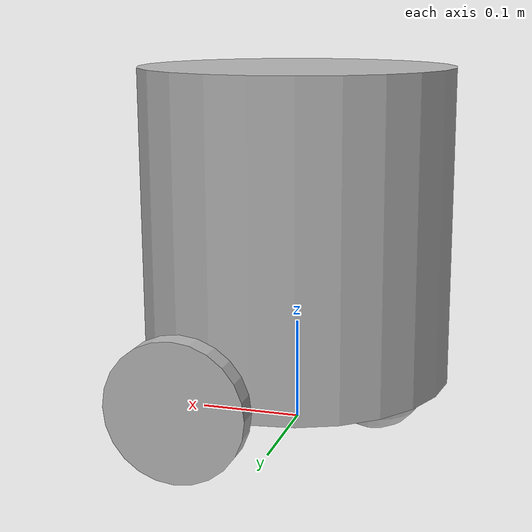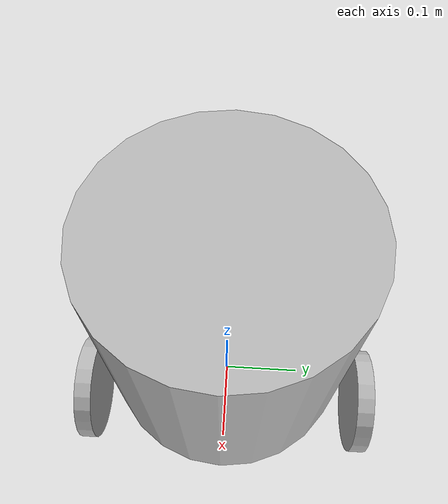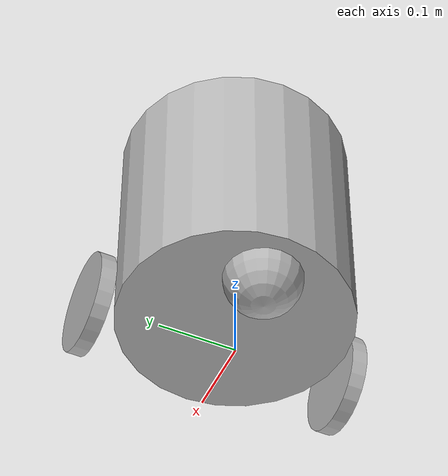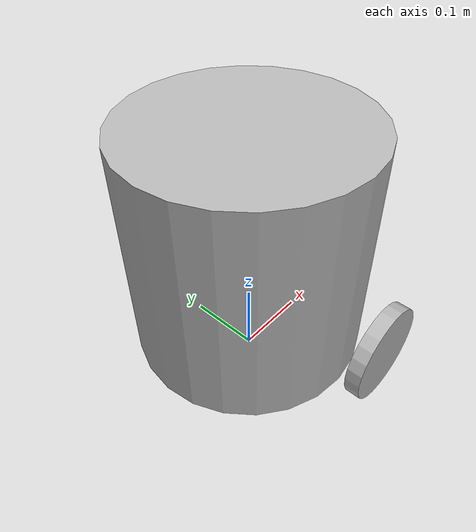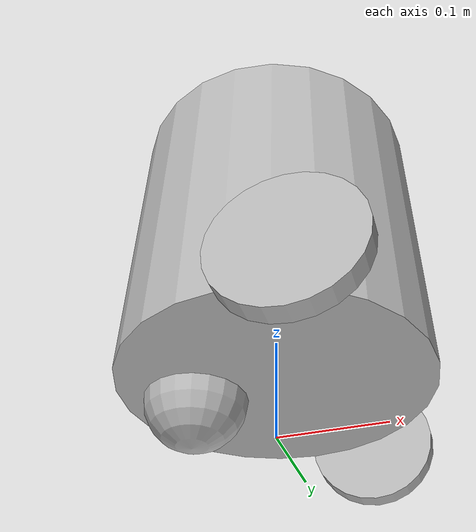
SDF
<?xml version='1.0'?>
<sdf version='1.4'>
  <model name="my_robot">
	<link name='chassis'>
            <pose>0 0 .2 0 0 0</pose>
	    <inertial>
		 <mass>10.0</mass>
		 <pose>0.0 0 0.1 0 0 0</pose>
		 <inertia>
		 <ixx>0.5</ixx>
		 <iyy>1.0</iyy>
		 <izz>0.1</izz>
		 </inertia>
	    </inertial>
            <collision name='collision'>
            <geometry>
              <cylinder>
	      <radius>.15</radius>
	      <length>.3</length>
	    </cylinder>
            </geometry>
          </collision>

            <visual name='visual'>
              <geometry>
              <cylinder>
	      <radius>.15</radius>
	      <length>.3</length>
	    </cylinder>
            </geometry>
            </visual>

	 <collision name='caster_collision'>
            <pose>-0.08 0 -0.15 0 0 0</pose>
            <geometry>
                <sphere>
                <radius>.05</radius>
              </sphere>
            </geometry>

            <surface>
              <friction>
                <ode>
                  <mu>0</mu>
                  <mu2>0</mu2>
                  <slip1>1.0</slip1>
                  <slip2>1.0</slip2>
                </ode>
              </friction>
            </surface>
          </collision>

          <visual name='caster_visual'>
            <pose>-0.08 0 -0.15 0 0 0</pose>
            <geometry>
              <sphere>
                <radius>.05</radius>
              </sphere>
            </geometry>
          </visual>

	  <sensor name="ir0" type="ray">
		<pose>0.17 0 0.0 0 0 0</pose>
		<ray>
		  <scan>
		    <horizontal>
		      <samples>1</samples>
		      <resolution>1</resolution>
		      <min_angle>-0.0001</min_angle>
		      <max_angle>0.0001</max_angle>
		    </horizontal>
		  </scan>
		  <range>
		    <min>0.08</min>
		    <max>.8</max>
		    <resolution>0.01</resolution>
		  </range>
		  <noise>
		    <type>gaussian</type>
		    <mean>0.0</mean>
		    <stddev>0.01</stddev>
		  </noise>
		</ray>
		<plugin name="gazebo_ros_head_hokuyo_controller" filename="libgazebo_ros_laser.so">
			<topicName>/ir0</topicName>
			<frameName>base</frameName>
	      	</plugin>

		<always_on>1</always_on>
		<update_rate>10</update_rate>
		<visualize>true</visualize>
	      </sensor>

          </link>

	<link name="left_wheel">
		<pose>0.06 0.17 0.065 0 1.5707 1.5707</pose>
		<collision name="collision">
		  <geometry>
		    <cylinder>
		      <radius>.065</radius>
		      <length>.02</length>
		    </cylinder>
		  </geometry>
		</collision>
		<visual name="visual">
		  <geometry>
		    <cylinder>
		      <radius>.065</radius>
		      <length>.02</length>
		    </cylinder>
		  </geometry>
		</visual>
      </link>
      <link name="right_wheel">
        <pose>0.06 -0.17 0.065 0 1.5707 1.5707</pose>
        <collision name="collision">
          <geometry>
            <cylinder>
              <radius>.065</radius>
              <length>.02</length>
            </cylinder>
          </geometry>
        </collision>
        <visual name="visual">
          <geometry>
            <cylinder>
              <radius>.065</radius>
              <length>.02</length>
            </cylinder>
          </geometry>
        </visual>
      </link>

 <joint type="revolute" name="left_wheel_hinge">
        <pose>0 0 -0.03 0 0 0</pose>
        <child>left_wheel</child>
        <parent>chassis</parent>
        <axis>
          <xyz>0 1 0</xyz>
        </axis>
      </joint>

      <joint type="revolute" name="right_wheel_hinge">
        <pose>0 0 0.03 0 0 0</pose>
        <child>right_wheel</child>
        <parent>chassis</parent>
        <axis>
          <xyz>0 1 0</xyz>
        </axis>
      </joint>

  </model>
</sdf>
